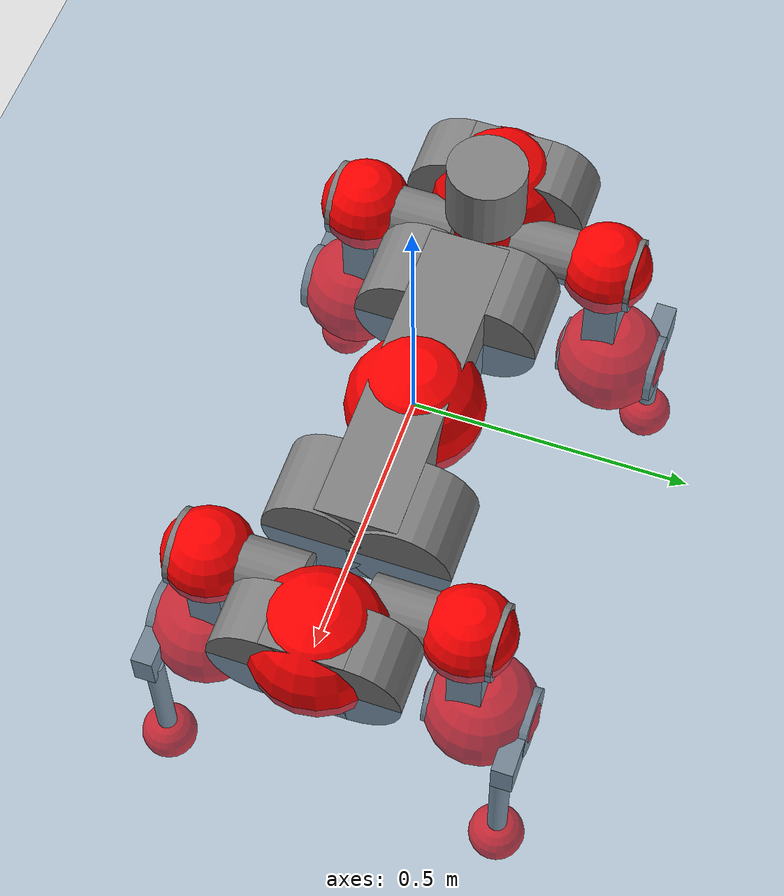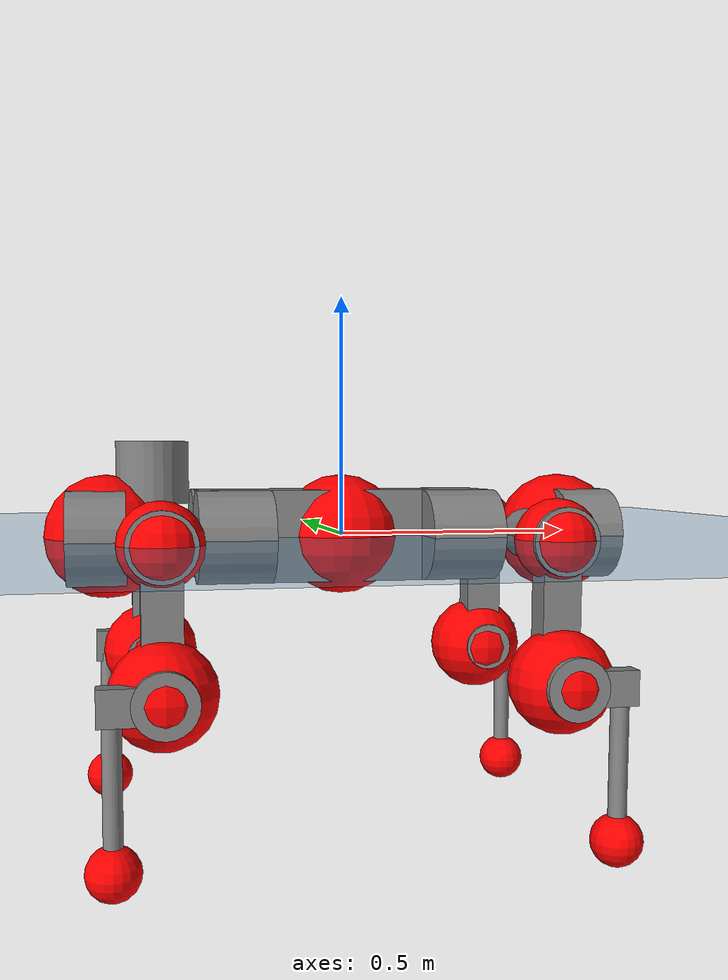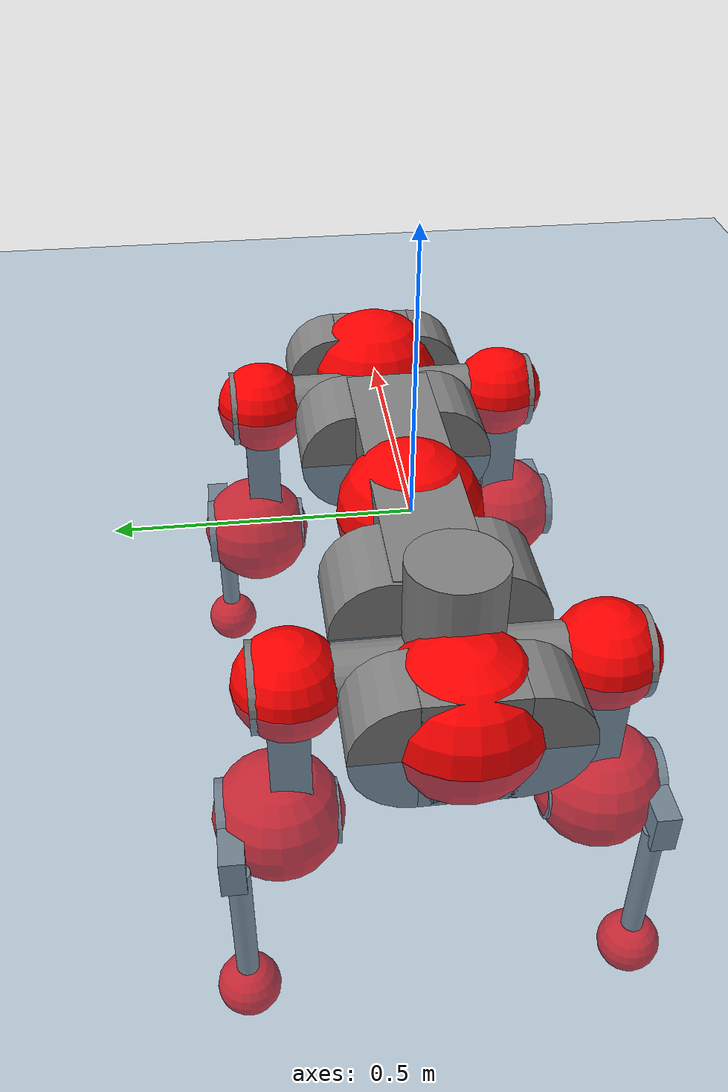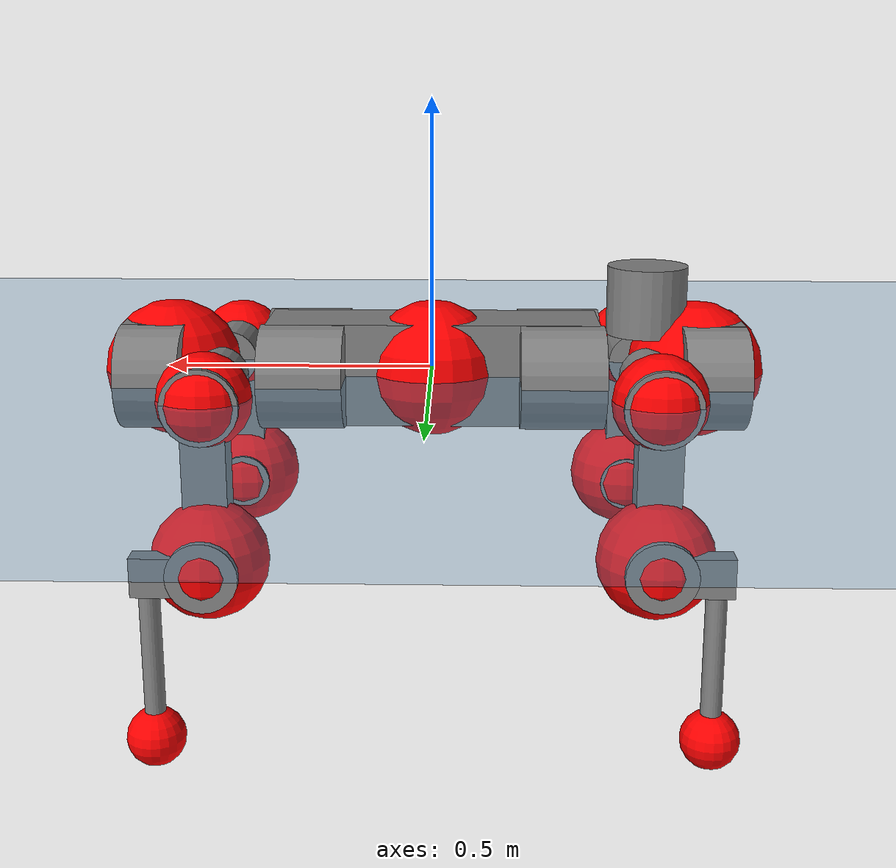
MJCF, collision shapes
<mujoco model="anymal_c">
  <compiler angle="radian" assetdir="assets" balanceinertia="true" inertiafromgeom="false"/>

  <option timestep="0.005" density="1.2" viscosity="2e-05"/>

  <size nkey="1"/>

  <visual>
    <quality shadowsize="8192"/>
    <map shadowclip="0.5"/>
  </visual>

  <default>
    <default class="/">
      <material specular="0" shininess="0.25"/>
      <geom contype="0" conaffinity="0" group="1" solref="-1000 -80"/>
      <site size="0.01 0.005 0.005" group="5"/>
      <general forcelimited="true" forcerange="-80 80" biastype="affine" gainprm="80" biasprm="0 -80 -2"/>
      <default class="anymal_c">
        <joint armature="0.01" damping="0.01" frictionloss="0.1"/>
        <default class="visual">
          <geom type="mesh" group="2"/>
          <default class="visual_zflip"/>
        </default>
        <default class="collision">
          <geom type="cylinder" group="3"/>
          <default class="foot">
            <geom size="0.03 0 0" type="sphere" condim="6" priority="1" friction="0.8 0.02 0.01" solimp="0.015 1 0.03"/>
          </default>
        </default>
      </default>
      <default class="reward_collision_sphere">
        <geom group="5" rgba="1 0 0 1"/>
      </default>
    </default>
  </default>

  <asset>
    <texture type="skybox" colorspace="auto" name="//unnamed_texture_0" builtin="gradient" rgb1="0.95 0.95 0.95" rgb2="0.95 0.95 0.95" width="100" height="600"/>
    <texture type="2d" colorspace="auto" name="texplane" builtin="checker" rgb1="0.345 0.575 0.748" rgb2="0.345 0.575 0.748" markrgb="1 1 1" width="512" height="512"/>
    <texture type="2d" colorspace="linear" name="base" file="base.png"/>
    <texture type="2d" colorspace="linear" name="top_shell" file="top_shell.png"/>
    <texture type="2d" colorspace="linear" name="bottom_shell" file="bottom_shell.png"/>
    <texture type="2d" colorspace="linear" name="remote" file="remote.png"/>
    <texture type="2d" colorspace="linear" name="hatch" file="hatch.png"/>
    <texture type="2d" colorspace="linear" name="handle" file="handle.png"/>
    <texture type="2d" colorspace="linear" name="face" file="face.png"/>
    <texture type="2d" colorspace="linear" name="battery" file="battery.png"/>
    <texture type="2d" colorspace="linear" name="lidar_cage" file="lidar_cage.png"/>
    <texture type="2d" colorspace="linear" name="depth_camera" file="depth_camera.png"/>
    <texture type="2d" colorspace="linear" name="wide_angle_camera" file="wide_angle_camera.png"/>
    <texture type="2d" colorspace="linear" name="lidar" file="lidar.png"/>
    <texture type="2d" colorspace="linear" name="drive" file="drive.png"/>
    <texture type="2d" colorspace="linear" name="hip_l" file="hip_l.png"/>
    <texture type="2d" colorspace="linear" name="shank_l" file="shank_l.png"/>
    <texture type="2d" colorspace="linear" name="foot" file="foot.png"/>
    <texture type="2d" colorspace="linear" name="thigh" file="thigh.png"/>
    <texture type="2d" colorspace="linear" name="shank_r" file="shank_r.png"/>
    <texture type="2d" colorspace="linear" name="hip_r" file="hip_r.png"/>
    <material name="MatPlane" class="/" texture="texplane" texuniform="true" texrepeat="2 2" specular="0.9" shininess="0.5"/>
    <material name="black_plastic" class="/" rgba="0.007 0.007 0.007 1"/>
    <material name="green" class="/" rgba="0.052 0.178 0.033 1"/>
    <material name="red" class="/" rgba="0.178 0.006 0.005 1"/>
    <material name="yellow" class="/" rgba="0.178 0.119 0.006 1"/>
    <material name="lwl" class="/" rgba="0.8 0.8 0.8 1"/>
    <material name="base" class="/" texture="base"/>
    <material name="top_shell" class="/" texture="top_shell"/>
    <material name="bottom_shell" class="/" texture="bottom_shell"/>
    <material name="hip_l" class="/" texture="hip_l"/>
    <material name="thigh" class="/" texture="thigh"/>
    <material name="shank_l" class="/" texture="shank_l"/>
    <material name="foot" class="/" texture="foot"/>
    <material name="hip_r" class="/" texture="hip_r"/>
    <material name="shank" class="/" texture="shank_r"/>
    <material name="hatch" class="/" texture="hatch"/>
    <material name="remote" class="/" texture="remote"/>
    <material name="handle" class="/" texture="handle"/>
    <material name="face" class="/" texture="face"/>
    <material name="depth_camera" class="/" texture="depth_camera"/>
    <material name="wide_angle_camera" class="/" texture="wide_angle_camera"/>
    <material name="battery" class="/" texture="battery"/>
    <material name="lidar_cage" class="/" texture="lidar_cage"/>
    <material name="lidar" class="/" texture="lidar"/>
    <material name="drive" class="/" texture="drive"/>
    <mesh name="base_0" class="/" file="base_0.obj"/>
    <mesh name="base_1" class="/" file="base_1.obj"/>
    <mesh name="base_2" class="/" file="base_2.obj"/>
    <mesh name="base_3" class="/" file="base_3.obj"/>
    <mesh name="base_4" class="/" file="base_4.obj"/>
    <mesh name="base_5" class="/" file="base_5.obj"/>
    <mesh name="top_shell" class="/" file="top_shell.obj"/>
    <mesh name="bottom_shell" class="/" file="bottom_shell.obj"/>
    <mesh name="remote" class="/" file="remote.obj"/>
    <mesh name="handle" class="/" file="handle.obj"/>
    <mesh name="face" class="/" file="face.obj"/>
    <mesh name="wide_angle_camera" class="/" file="wide_angle_camera.obj"/>
    <mesh name="depth_camera" class="/" file="depth_camera.obj"/>
    <mesh name="battery" class="/" file="battery.obj"/>
    <mesh name="lidar_cage" class="/" file="lidar_cage.obj"/>
    <mesh name="lidar" class="/" file="lidar.obj"/>
    <mesh name="drive" class="/" file="drive.obj"/>
    <mesh name="hip_l" class="/" file="hip_l.obj"/>
    <mesh name="thigh" class="/" file="thigh.obj"/>
    <mesh name="shank_l" class="/" file="shank_l.obj"/>
    <mesh name="foot" class="/" file="foot.obj"/>
    <mesh name="hip_r" class="/" file="hip_r.obj"/>
    <mesh name="hatch" class="/" file="hatch.obj"/>
    <mesh name="shank_r" class="/" file="shank_r.obj"/>
  </asset>

  <worldbody>
    <geom name="floor" class="/" size="100 100 0.125" type="plane" group="0" material="MatPlane"/>
    <light name="toplight_shadow" class="/" pos="0 0 5" dir="0.0990148 0.0990148 -0.990148" type="directional" ambient="0.04 0.04 0.04" diffuse="0.55 0.55 0.55" specular="0.12 0.12 0.12"/>
    <light name="toplight_fill" class="/" pos="0 0 5" dir="0.0990148 0.0990148 -0.990148" type="directional" castshadow="false" ambient="0.04 0.04 0.04" diffuse="0.3 0.3 0.3" specular="0.08 0.08 0.08"/>
    <body name="trunk" childclass="anymal_c" pos="-0.00203483 0.00238883 -0.000617475" quat="0.999999 -0.00100032 0.000531177 0.000530214">
      <inertial pos="0.00242684 -0.0020862 0.0498202" quat="0.505617 0.495366 0.501741 0.497213" mass="23.4571" diaginertia="0.954075 1.01032 0.201153"/>
      <joint name="//unnamed_joint_0" type="free" armature="0" damping="0" frictionloss="0"/>
      <geom name="//unnamed_geom_1" class="visual" material="green" mesh="base_0"/>
      <geom name="//unnamed_geom_2" class="visual" material="yellow" mesh="base_1"/>
      <geom name="//unnamed_geom_3" class="visual" material="red" mesh="base_2"/>
      <geom name="//unnamed_geom_4" class="visual" material="black_plastic" mesh="base_3"/>
      <geom name="//unnamed_geom_5" class="visual" material="lwl" mesh="base_4"/>
      <geom name="//unnamed_geom_6" class="visual" material="base" mesh="base_5"/>
      <geom name="trunk_1" class="collision" size="0.30752 0.074229 0.0954373" type="box"/>
      <geom name="trunk_2" class="collision" size="0.0954373 0.07688" pos="0.237557 0.0771735 0" quat="0.707107 0 0.707107 0"/>
      <geom name="trunk_3" class="collision" size="0.0954373 0.07688" pos="-0.237557 0.0771735 0" quat="0.707107 0 0.707107 0"/>
      <geom name="trunk_4" class="collision" size="0.0954373 0.07688" pos="0.237557 -0.0771735 0" quat="0.707107 0 0.707107 0"/>
      <geom name="trunk_5" class="collision" size="0.0954373 0.07688" pos="-0.237557 -0.0771735 0" quat="0.707107 0 0.707107 0"/>
      <geom name="//unnamed_geom_12" class="visual" material="top_shell" mesh="top_shell"/>
      <geom name="//unnamed_geom_13" class="visual" material="bottom_shell" mesh="bottom_shell"/>
      <geom name="//unnamed_geom_14" class="visual" material="remote" mesh="remote"/>
      <geom name="//unnamed_geom_15" class="visual" material="handle" mesh="handle"/>
      <geom name="//unnamed_geom_16" class="visual" pos="0.452723 0 0" quat="1 0 0 0" material="face" mesh="face"/>
      <geom name="trunk_6" class="collision" size="0.0583228 0.074229 0.0954373" pos="0.512795 0 0" type="box"/>
      <geom name="//unnamed_geom_18" class="collision" size="0.0954373 0.0583228" pos="0.512795 0.0771735 0" quat="0.707107 0 0.707107 0"/>
      <geom name="//unnamed_geom_19" class="collision" size="0.0954373 0.0583228" pos="0.512795 -0.0771735 0" quat="0.707107 0 0.707107 0"/>
      <geom name="//unnamed_geom_20" class="visual" pos="0.504217 0 -0.0280041" quat="0.965926 0 0.258819 0" material="depth_camera" mesh="depth_camera"/>
      <geom name="//unnamed_geom_21" class="visual" pos="0.560307 0 0.0147686" material="wide_angle_camera" mesh="wide_angle_camera"/>
      <geom name="//unnamed_geom_22" class="visual_zflip" pos="-0.452723 0 0" quat="0 0 0 1" material="face" mesh="face"/>
      <geom name="trunk_7" class="collision" size="0.0583228 0.074229 0.0954373" pos="-0.512795 0 0" quat="0 0 0 1" type="box"/>
      <geom name="//unnamed_geom_24" class="collision" size="0.0954373 0.0583228" pos="-0.512795 -0.0771735 0" quat="0 -0.707107 0 0.707107"/>
      <geom name="//unnamed_geom_25" class="collision" size="0.0954373 0.0583228" pos="-0.512795 0.0771735 0" quat="0 -0.707107 0 0.707107"/>
      <geom name="//unnamed_geom_26" class="visual" pos="-0.504217 0 -0.0280041" quat="0 -0.258819 0 0.965926" material="depth_camera" mesh="depth_camera"/>
      <geom name="//unnamed_geom_27" class="visual_zflip" pos="-0.560307 0 0.0147686" quat="0 0 0 1" material="wide_angle_camera" mesh="wide_angle_camera"/>
      <geom name="//unnamed_geom_28" class="visual" material="battery" mesh="battery"/>
      <geom name="//unnamed_geom_29" class="visual" pos="0 0.0844258 0.0294623" quat="0.683013 -0.183013 0.183013 0.683013" material="depth_camera" mesh="depth_camera"/>
      <geom name="//unnamed_geom_30" class="visual" pos="0 -0.0844258 0.0294623" quat="0.683013 0.183013 0.183013 -0.683013" material="depth_camera" mesh="depth_camera"/>
      <geom name="//unnamed_geom_31" class="visual" pos="-0.397567 0 0.0725113" quat="1 0 0 0" material="lidar_cage" mesh="lidar_cage"/>
      <geom name="trunk_8" class="collision" size="0.074229 0.0636249" pos="-0.397567 0 0.131704"/>
      <geom name="//unnamed_geom_33" class="visual" pos="-0.397567 4.03199e-06 0.140287" quat="0.707107 0 0 -0.707107" material="lidar" mesh="lidar"/>
      <geom name="//unnamed_geom_34" class="visual" pos="0.327556 0.114617 1.99981e-09" quat="0.258819 0.965926 0 0" material="drive" mesh="drive"/>
      <geom name="//unnamed_geom_35" class="visual" pos="0.327556 -0.114617 -1.99981e-09" quat="0.258819 -0.965926 0 0" material="drive" mesh="drive"/>
      <geom name="//unnamed_geom_36" class="visual" pos="-0.327556 0.114617 -1.99981e-09" quat="0 0 0.965926 -0.258819" material="drive" mesh="drive"/>
      <geom name="//unnamed_geom_37" class="visual" pos="-0.327556 -0.114617 1.99981e-09" quat="0 0 -0.965926 -0.258819" material="drive" mesh="drive"/>
      <geom name="//unnamed_geom_38" class="visual" pos="0.126697 0 0.072018" quat="1 0 0 0" material="hatch" mesh="hatch"/>
      <geom name="//unnamed_geom_39" class="reward_collision_sphere" size="0.12725"/>
      <geom name="//unnamed_geom_40" class="reward_collision_sphere" size="0.12725" pos="0.491497 0 0"/>
      <geom name="//unnamed_geom_41" class="reward_collision_sphere" size="0.12725" pos="-0.491497 0 0"/>
      <site name="imu" pos="0.284607 0.00067809 0.062395" size="0.0106041"/>
      <camera name="track" pos="0 -2.20496 0" quat="0.707107 0.707107 0 0" mode="trackcom"/>
      <camera name="ego_camera" pos="0.491497 0 -0.0394619" quat="-0.5 -0.5 0.5 0.5"/>
      <body name="LF_HIP" pos="0.329935 0.114201 -0.00198064" quat="0.259095 0.965852 -3.3388e-05 0.000671117">
        <inertial pos="0.0647331 -0.0189912 -0.00716701" quat="-0.124444 0.710787 -0.135806 0.678861" mass="3.2239" diaginertia="0.00885866 0.00802652 0.00302519"/>
        <joint name="LF_HAA" pos="0 0 0" axis="0.999742 0.0193829 0.0118271" stiffness="0.0102155" range="-0.735441 0.489043" armature="0.012366" damping="0.0235682" frictionloss="0.116042"/>
        <geom name="//unnamed_geom_42" class="visual" pos="0 0.00011764 -1.93223e-05" quat="0.258819 -0.965926 0 0" material="hip_l" mesh="hip_l"/>
        <geom name="//unnamed_geom_43" class="visual" pos="0.0654237 -0.0793687 -0.0449661" quat="0.183013 -0.683013 0.683013 0.183013" material="drive" mesh="drive"/>
        <geom name="//unnamed_geom_44" class="collision" size="0.0530207 0.074229" pos="0.0654237 -0.0131854 -0.00681212" quat="-0.353553 -0.612372 0.612372 -0.353553"/>
        <body name="LF_THIGH" pos="0.0646512 -0.0795953 -0.0419544" quat="0.183506 -0.68271 0.683362 0.182344">
          <inertial pos="0.033816 0.000151507 -0.238555" quat="0.992221 -0.00629738 -0.0905023 0.0852462" mass="3.54763" diaginertia="0.0452507 0.0472753 0.00380806"/>
          <joint name="LF_HFE" pos="0 0 0" axis="0.999941 0.0072432 -0.00804576" range="-3.09892 3.14344" armature="0.00995599" damping="0.00180625" frictionloss="0.0991603"/>
          <geom name="//unnamed_geom_45" class="visual" pos="-0.00020419 -3.21756e-07 0" quat="0.707107 0 0 -0.707107" material="thigh" mesh="thigh"/>
          <geom name="//unnamed_geom_46" class="collision" size="0.0689269 0.0424166" pos="0.0436886 0 0" quat="0.5 0.5 -0.5 -0.5"/>
          <geom name="//unnamed_geom_47" class="collision" size="0.0397655 0.0318124 0.149851" pos="0.0327665 0 -0.139413" quat="0.707107 0 0 -0.707107" type="box"/>
          <geom name="//unnamed_geom_48" class="visual" pos="0.109549 0 -0.281166" quat="1 0 0 0" material="drive" mesh="drive"/>
          <geom name="//unnamed_geom_49" class="collision" size="0.0530207 0.074229" pos="0.0330941 0 -0.281166" quat="0.707107 0 0.707107 0"/>
          <geom name="//unnamed_geom_50" class="reward_collision_sphere" size="0.0848331" pos="0.0273054 0 0"/>
          <body name="LF_SHANK" pos="0.109567 0.00398928 -0.284184" quat="1 -7.5953e-06 8.64837e-06 7.66373e-07">
            <inertial pos="0.00794222 -0.0699022 -0.0793914" quat="0.991264 -0.128729 0.00325611 -0.0285136" mass="0.720525" diaginertia="0.0160803 0.0151128 0.00107745"/>
            <joint name="LF_KFE" pos="0 0 0" axis="0.99988 -0.0152351 0.00287354" range="-3.15718 3.09905" armature="0.0101214" damping="0.00924913" frictionloss="0.111682"/>
            <geom name="//unnamed_geom_51" class="visual" pos="-6.6582e-05 -0.000355018 0" quat="0.707107 0 0 -0.707107" material="shank_l" mesh="shank_l"/>
            <geom name="LF_kfe_act" class="collision" size="0.0636249 0.0212083" pos="0.0218443 0 0" quat="0.5 0.5 -0.5 -0.5"/>
            <geom name="//unnamed_geom_53" class="collision" size="0.0609728 0.035789 0.0201479" pos="0.0218443 -0.0633914 0" quat="0.5 0.5 -0.5 -0.5" type="box"/>
            <geom name="//unnamed_geom_54" class="visual" pos="0.0142534 -0.0970774 -0.333424" quat="0.382683 0 0 -0.92388" material="foot" mesh="foot"/>
            <geom name="LF_calf" class="collision" size="0.0185573 0.149786" pos="0.0142534 -0.096963 -0.166712" quat="0.707107 0 0 -0.707107"/>
            <geom name="LF_foot" class="foot" size="0.0325824" pos="0.0142534 -0.096963 -0.311226" quat="0.707107 0 0 -0.707107"/>
            <geom name="//unnamed_geom_57" class="reward_collision_sphere" size="0.106041" pos="-0.0546108 0 0"/>
            <geom name="//unnamed_geom_58" class="reward_collision_sphere" size="0.0530207" pos="0.0142534 -0.096963 -0.311226"/>
            <site name="LF_foot" class="foot" pos="0.0142534 -0.096963 -0.311226" quat="0.707107 0 0 -0.707107" size="0.0106041"/>
          </body>
        </body>
      </body>
      <body name="RF_HIP" pos="0.331473 -0.118749 0.000982066" quat="0.259364 -0.965779 0.000563085 0.000406905">
        <inertial pos="0.0584132 0.0199829 -0.00567568" quat="0.131128 0.678236 0.130448 0.711185" mass="3.2578" diaginertia="0.0087176 0.0076435 0.0029455"/>
        <joint name="RF_HAA" pos="0 0 0" axis="0.999962 -0.00591267 0.00639486" range="-0.437143 0.754176" armature="0.0102679" damping="0.0173457" frictionloss="0.112615"/>
        <geom name="//unnamed_geom_59" class="visual" pos="0 -0.000117639 -1.93222e-05" quat="0.258819 0.965926 0 0" material="hip_r" mesh="hip_r"/>
        <geom name="//unnamed_geom_60" class="visual" pos="0.0654237 0.0793687 -0.0449661" quat="0.183013 0.683013 0.683013 -0.183013" material="drive" mesh="drive"/>
        <geom name="//unnamed_geom_61" class="collision" size="0.0530207 0.074229" pos="0.0654237 0.0131854 -0.00681212" quat="-0.353553 0.612372 0.612372 0.353553"/>
        <body name="RF_THIGH" pos="0.0653918 0.0784256 -0.0405178" quat="0.183387 0.682773 0.683347 -0.182283">
          <inertial pos="0.031961 -0.00461222 -0.239711" quat="0.992731 -0.00454487 -0.0810157 0.0888874" mass="3.77682" diaginertia="0.0470027 0.0514778 0.00403683"/>
          <joint name="RF_HFE" pos="0 0 0" axis="0.999981 -0.0047797 0.00387724" stiffness="0.0124812" range="-3.17495 3.17609" armature="0.00911363" damping="0.0121735" frictionloss="0.117855"/>
          <geom name="//unnamed_geom_62" class="visual" pos="-0.00020419 -3.21756e-07 0" quat="0.707107 0 0 -0.707107" material="thigh" mesh="thigh"/>
          <geom name="//unnamed_geom_63" class="collision" size="0.0689269 0.0424166" pos="0.0436886 0 0" quat="0.5 0.5 0.5 0.5"/>
          <geom name="//unnamed_geom_64" class="collision" size="0.0397655 0.0318124 0.149851" pos="0.0327665 0 -0.139413" quat="0.707107 0 0 0.707107" type="box"/>
          <geom name="//unnamed_geom_65" class="visual" pos="0.109549 0 -0.281166" quat="1 0 0 0" material="drive" mesh="drive"/>
          <geom name="//unnamed_geom_66" class="collision" size="0.0530207 0.074229" pos="0.0330941 0 -0.281166" quat="0.707107 0 0.707107 0"/>
          <geom name="//unnamed_geom_67" class="reward_collision_sphere" size="0.0848331" pos="0.0273054 0 0"/>
          <body name="RF_SHANK" pos="0.108932 0.00303318 -0.28257" quat="0.999998 -0.000389848 -3.22271e-05 0.00182106">
            <inertial pos="0.00123485 0.0668663 -0.0807566" quat="0.992958 0.11309 0.00247281 0.0351858" mass="0.696064" diaginertia="0.0157623 0.0144091 0.000974243"/>
            <joint name="RF_KFE" pos="0 0 0" axis="0.999929 -0.00866464 0.00823051" range="-3.08183 3.12523" armature="0.0116282" damping="0" frictionloss="0.0962948"/>
            <geom name="//unnamed_geom_68" class="visual" pos="-6.65816e-05 0.000355018 0" quat="0.707107 0 0 0.707107" material="shank" mesh="shank_r"/>
            <geom name="RF_kfe_act" class="collision" size="0.0636249 0.0212083" pos="0.0218443 0 0" quat="0.5 0.5 0.5 0.5"/>
            <geom name="//unnamed_geom_70" class="collision" size="0.0609728 0.035789 0.0201479" pos="0.0218443 0.0633914 0" quat="0.5 0.5 0.5 0.5" type="box"/>
            <geom name="//unnamed_geom_71" class="visual" pos="0.0142534 0.0970774 -0.333424" quat="0.382683 0 0 0.92388" material="foot" mesh="foot"/>
            <geom name="RF_calf" class="collision" size="0.0185573 0.149786" pos="0.0142534 0.096963 -0.166712" quat="0.707107 0 0 0.707107"/>
            <geom name="RF_foot" class="foot" size="0.0290697" pos="0.0142534 0.096963 -0.311226" quat="0.707107 0 0 0.707107"/>
            <geom name="//unnamed_geom_74" class="reward_collision_sphere" size="0.106041" pos="-0.0546108 0 0"/>
            <geom name="//unnamed_geom_75" class="reward_collision_sphere" size="0.0530207" pos="0.0142534 0.096963 -0.311226"/>
            <site name="RF_foot" class="foot" pos="0.0142534 0.096963 -0.311226" quat="0.707107 0 0 0.707107" size="0.0106041"/>
          </body>
        </body>
      </body>
      <body name="LH_HIP" pos="-0.332364 0.116577 -0.000603571" quat="0.00022194 0.000801543 0.965815 -0.259232">
        <inertial pos="0.0589707 0.0212734 -0.00889273" quat="0.134077 0.681015 0.119905 0.709834" mass="3.26613" diaginertia="0.00889588 0.00810014 0.00316112"/>
        <joint name="LH_HAA" pos="0 0 0" axis="0.999935 -0.0072866 0.00878041" range="-0.485525 0.770578" armature="0.010585" damping="0.00861385" frictionloss="0.0926978"/>
        <geom name="//unnamed_geom_76" class="visual" pos="0 -0.000117639 -1.93222e-05" quat="-0.258819 -0.965926 0 0" material="hip_r" mesh="hip_r"/>
        <geom name="//unnamed_geom_77" class="visual" pos="0.0654237 0.0793687 -0.0449661" quat="0.183013 0.683013 0.683013 -0.183013" material="drive" mesh="drive"/>
        <geom name="//unnamed_geom_78" class="collision" size="0.0530207 0.074229" pos="0.0654237 0.0131854 -0.00681212" quat="-0.353553 0.612372 0.612372 0.353553"/>
        <body name="LH_THIGH" pos="0.0663572 0.0824891 -0.0431266" quat="0.182872 0.682716 0.682974 -0.184403">
          <inertial pos="0.0360754 -0.00331702 -0.241777" quat="0.992878 -0.00737494 -0.0796514 0.0882857" mass="3.77" diaginertia="0.0467625 0.0489265 0.00411321"/>
          <joint name="LH_HFE" pos="0 0 0" axis="0.999929 0.0111386 -0.00420036" stiffness="0.000575308" range="-3.13462 3.15608" armature="0.0091115" damping="0.0209557" frictionloss="0.0990779"/>
          <geom name="//unnamed_geom_79" class="visual" pos="-0.00020419 -3.21756e-07 0" quat="0.707107 0 0 -0.707107" material="thigh" mesh="thigh"/>
          <geom name="//unnamed_geom_80" class="collision" size="0.0689269 0.0424166" pos="0.0436886 0 0" quat="0.5 0.5 -0.5 -0.5"/>
          <geom name="//unnamed_geom_81" class="collision" size="0.0397655 0.0318124 0.149851" pos="0.0327665 0 -0.139413" quat="0.707107 0 0 -0.707107" type="box"/>
          <geom name="//unnamed_geom_82" class="visual" pos="0.109549 0 -0.281166" quat="1 0 0 0" material="drive" mesh="drive"/>
          <geom name="//unnamed_geom_83" class="collision" size="0.0530207 0.074229" pos="0.0330941 0 -0.281166" quat="0.707107 0 0.707107 0"/>
          <geom name="//unnamed_geom_84" class="reward_collision_sphere" size="0.0848331" pos="0.0273054 0 0"/>
          <body name="LH_SHANK" pos="0.108836 -0.00138736 -0.27715" quat="0.999998 0.000597797 -0.00135623 -0.00138041">
            <inertial pos="0.00716816 0.0676706 -0.0843926" quat="0.993569 0.109652 0.0023287 0.0281274" mass="0.715017" diaginertia="0.0157325 0.0145008 0.00102872"/>
            <joint name="LH_KFE" pos="0 0 0" axis="0.999938 0.00887586 -0.00668271" range="-3.09872 3.12385" armature="0.0119261" damping="0.00445022" frictionloss="0.109236"/>
            <geom name="//unnamed_geom_85" class="visual" pos="-6.65816e-05 0.000355018 0" quat="-0.707107 0 0 -0.707107" material="shank" mesh="shank_r"/>
            <geom name="LH_kfe_act" class="collision" size="0.0636249 0.0212083" pos="0.0218443 0 0" quat="0.5 0.5 -0.5 -0.5"/>
            <geom name="//unnamed_geom_87" class="collision" size="0.0609728 0.035789 0.0201479" pos="0.0218443 0.0633914 0" quat="0.5 0.5 -0.5 -0.5" type="box"/>
            <geom name="//unnamed_geom_88" class="visual" pos="0.0142534 0.0970774 -0.333424" quat="-0.382683 0 0 -0.92388" material="foot" mesh="foot"/>
            <geom name="LH_calf" class="collision" size="0.0185573 0.149786" pos="0.0142534 0.096963 -0.166712" quat="0.707107 0 0 -0.707107"/>
            <geom name="LH_foot" class="foot" size="0.0330713" pos="0.0142534 0.096963 -0.311226" quat="0.707107 0 0 -0.707107"/>
            <geom name="//unnamed_geom_91" class="reward_collision_sphere" size="0.106041" pos="-0.0546108 0 0"/>
            <geom name="//unnamed_geom_92" class="reward_collision_sphere" size="0.0530207" pos="0.0142534 0.096963 -0.311226"/>
            <site name="LH_foot" class="foot" pos="0.0142534 0.096963 -0.311226" quat="0.707107 0 0 -0.707107" size="0.0106041"/>
          </body>
        </body>
      </body>
      <body name="RH_HIP" pos="-0.324385 -0.111564 -3.24747e-05" quat="0.000170469 0.000168068 -0.965667 -0.259782">
        <inertial pos="0.0618299 -0.0152944 -0.00867507" quat="-0.134342 0.699265 -0.133361 0.689344" mass="3.23874" diaginertia="0.00899916 0.00785667 0.00302559"/>
        <joint name="RH_HAA" pos="0 0 0" axis="0.999842 0.00543665 0.016917" range="-0.718208 0.544683" armature="0.00933916" damping="0.0193093" frictionloss="0.102684"/>
        <geom name="//unnamed_geom_93" class="visual" pos="0 0.00011764 -1.93223e-05" quat="-0.258819 0.965926 0 0" material="hip_l" mesh="hip_l"/>
        <geom name="//unnamed_geom_94" class="visual" pos="0.0654237 -0.0793687 -0.0449661" quat="-0.183013 0.683013 -0.683013 -0.183013" material="drive" mesh="drive"/>
        <geom name="//unnamed_geom_95" class="collision" size="0.0530207 0.074229" pos="0.0654237 -0.0131854 -0.00681212" quat="0.353553 0.612372 -0.612372 0.353553"/>
        <body name="RH_THIGH" pos="0.0673324 -0.0813323 -0.043668" quat="-0.182417 0.683775 -0.682702 -0.18192">
          <inertial pos="0.0365376 -0.000851089 -0.239632" quat="0.995005 0.0040933 -0.0629588 0.0773569" mass="3.5079" diaginertia="0.0465626 0.0474746 0.00365777"/>
          <joint name="RH_HFE" pos="0 0 0" axis="0.999893 0.00784614 0.0123658" stiffness="0.00126496" range="-3.15638 3.1943" armature="0.00998537" damping="0.0190837" frictionloss="0.0964133"/>
          <geom name="//unnamed_geom_96" class="visual" pos="-0.00020419 -3.21756e-07 0" quat="0.707107 0 0 -0.707107" material="thigh" mesh="thigh"/>
          <geom name="//unnamed_geom_97" class="collision" size="0.0689269 0.0424166" pos="0.0436886 0 0" quat="0.5 0.5 0.5 0.5"/>
          <geom name="//unnamed_geom_98" class="collision" size="0.0397655 0.0318124 0.149851" pos="0.0327665 0 -0.139413" quat="0.707107 0 0 0.707107" type="box"/>
          <geom name="//unnamed_geom_99" class="visual" pos="0.109549 0 -0.281166" quat="1 0 0 0" material="drive" mesh="drive"/>
          <geom name="//unnamed_geom_100" class="collision" size="0.0530207 0.074229" pos="0.0330941 0 -0.281166" quat="0.707107 0 0.707107 0"/>
          <geom name="//unnamed_geom_101" class="reward_collision_sphere" size="0.0848331" pos="0.0273054 0 0"/>
          <body name="RH_SHANK" pos="0.107 0.000853987 -0.281013" quat="1 -8.19673e-05 -9.85242e-06 6.11549e-06">
            <inertial pos="0.00788602 -0.0638063 -0.0825355" quat="0.992786 -0.116861 -0.000360765 -0.0268264" mass="0.680406" diaginertia="0.0154784 0.0145437 0.00102909"/>
            <joint name="RH_KFE" pos="0 0 0" axis="1 -0.00017407 0.000241978" range="-3.17516 3.0794" armature="0.0107887" damping="0.0186338" frictionloss="0.0890989"/>
            <geom name="//unnamed_geom_102" class="visual" pos="-6.6582e-05 -0.000355018 0" quat="0.707107 0 0 -0.707107" material="shank_l" mesh="shank_l"/>
            <geom name="RH_kfe_act" class="collision" size="0.0636249 0.0212083" pos="0.0218443 0 0" quat="0.5 0.5 0.5 0.5"/>
            <geom name="//unnamed_geom_104" class="collision" size="0.0609728 0.035789 0.0201479" pos="0.0218443 -0.0633914 0" quat="0.5 0.5 0.5 0.5" type="box"/>
            <geom name="//unnamed_geom_105" class="visual" pos="0.0142534 -0.0970774 -0.333424" quat="0.382683 0 0 -0.92388" material="foot" mesh="foot"/>
            <geom name="RH_calf" class="collision" size="0.0185573 0.149786" pos="0.0142534 -0.096963 -0.166712" quat="0.707107 0 0 0.707107"/>
            <geom name="RH_foot" class="foot" size="0.0282045" pos="0.0142534 -0.096963 -0.311226" quat="0.707107 0 0 0.707107"/>
            <geom name="//unnamed_geom_108" class="reward_collision_sphere" size="0.106041" pos="-0.0546108 0 0"/>
            <geom name="//unnamed_geom_109" class="reward_collision_sphere" size="0.0530207" pos="0.0142534 -0.096963 -0.311226"/>
            <site name="RH_foot" class="foot" pos="0.0142534 -0.096963 -0.311226" quat="0.707107 0 0 0.707107" size="0.0106041"/>
          </body>
        </body>
      </body>
    </body>
  </worldbody>

  <contact>
    <pair class="/" geom1="floor" geom2="LF_foot" name="//unnamed_contact_0"/>
    <pair class="/" geom1="floor" geom2="RF_foot" name="//unnamed_contact_1"/>
    <pair class="/" geom1="floor" geom2="LH_foot" name="//unnamed_contact_2"/>
    <pair class="/" geom1="floor" geom2="RH_foot" name="//unnamed_contact_3"/>
  </contact>

  <actuator>
    <general name="LF_HAA" class="/" joint="LF_HAA" forcerange="-86.4628 86.4628" gainprm="85.1652" biasprm="0 -85.1652 -2.29895"/>
    <general name="LF_HFE" class="/" joint="LF_HFE" forcerange="-88.8642 88.8642" gainprm="85.1652" biasprm="0 -85.1652 -2.29895"/>
    <general name="LF_KFE" class="/" joint="LF_KFE" forcerange="-92.0666 92.0666" gainprm="85.1652" biasprm="0 -85.1652 -2.29895"/>
    <general name="RF_HAA" class="/" joint="RF_HAA" forcerange="-82.9955 82.9955" gainprm="85.1652" biasprm="0 -85.1652 -2.29895"/>
    <general name="RF_HFE" class="/" joint="RF_HFE" forcerange="-94.0882 94.0882" gainprm="85.1652" biasprm="0 -85.1652 -2.29895"/>
    <general name="RF_KFE" class="/" joint="RF_KFE" forcerange="-88.6288 88.6288" gainprm="85.1652" biasprm="0 -85.1652 -2.29895"/>
    <general name="LH_HAA" class="/" joint="LH_HAA" forcerange="-85.5094 85.5094" gainprm="85.1652" biasprm="0 -85.1652 -2.29895"/>
    <general name="LH_HFE" class="/" joint="LH_HFE" forcerange="-87.9649 87.9649" gainprm="85.1652" biasprm="0 -85.1652 -2.29895"/>
    <general name="LH_KFE" class="/" joint="LH_KFE" forcerange="-80.8101 80.8101" gainprm="85.1652" biasprm="0 -85.1652 -2.29895"/>
    <general name="RH_HAA" class="/" joint="RH_HAA" forcerange="-85.6947 85.6947" gainprm="85.1652" biasprm="0 -85.1652 -2.29895"/>
    <general name="RH_HFE" class="/" joint="RH_HFE" forcerange="-94.2817 94.2817" gainprm="85.1652" biasprm="0 -85.1652 -2.29895"/>
    <general name="RH_KFE" class="/" joint="RH_KFE" forcerange="-97.9563 97.9563" gainprm="85.1652" biasprm="0 -85.1652 -2.29895"/>
  </actuator>

  <sensor>
    <gyro site="imu" name="imu_angular_velocity"/>
    <velocimeter site="imu" name="imu_linear_velocity"/>
    <framelinvel objtype="site" objname="LF_foot" name="LF_foot_global_linear_velocity"/>
    <framelinvel objtype="site" objname="RF_foot" name="RF_foot_global_linear_velocity"/>
    <framelinvel objtype="site" objname="LH_foot" name="LH_foot_global_linear_velocity"/>
    <framelinvel objtype="site" objname="RH_foot" name="RH_foot_global_linear_velocity"/>
  </sensor>

  <keyframe>
    <key name="home" qpos="0 0 0.55 1 0 0 0 0 0.4 -0.8 0 -0.4 0.8 0 -0.4 0.8 0 0.4 -0.8"/>
  </keyframe>
</mujoco>
